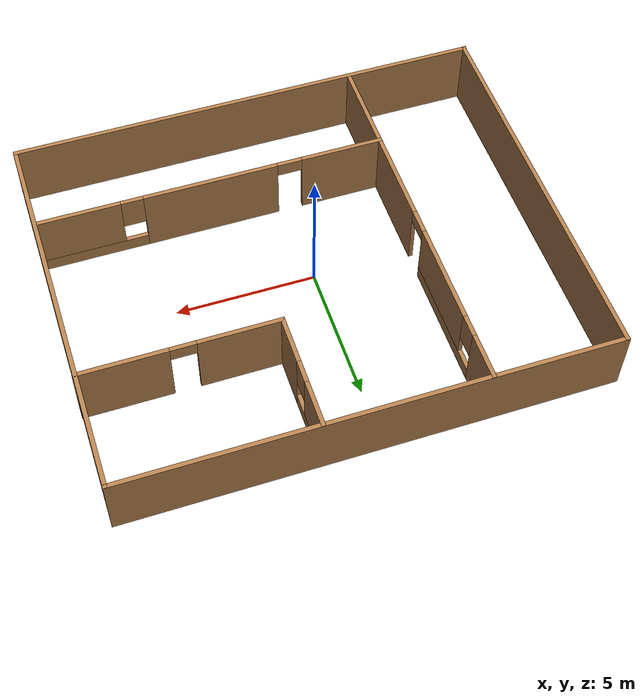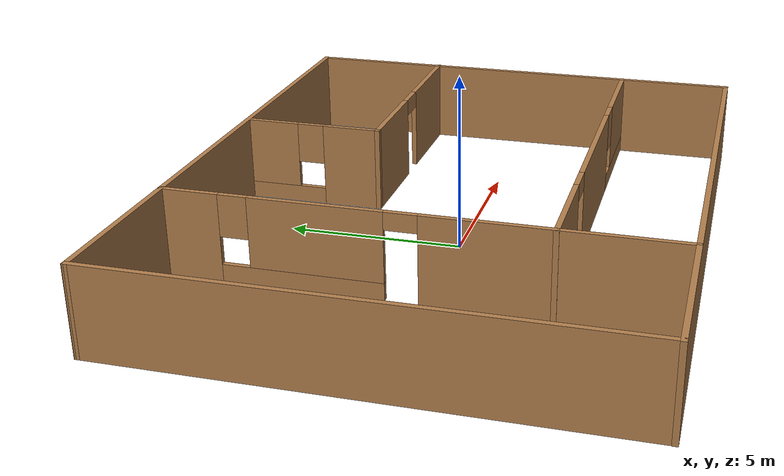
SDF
<?xml version='1.0'?>
<sdf version='1.7'>
  <model name='Class'>
    <pose>0.381618 0.217526 0 0 -0 0</pose>
    <link name='Wall_12'>
      <collision name='Wall_12_Collision'>
        <geometry>
          <box>
            <size>14 0.15 2.5</size>
          </box>
        </geometry>
        <pose>0 0 1.25 0 -0 0</pose>
      </collision>
      <visual name='Wall_12_Visual'>
        <pose>0 0 1.25 0 -0 0</pose>
        <geometry>
          <box>
            <size>14 0.15 2.5</size>
          </box>
        </geometry>
        <material>
          <script>
            <uri>file://media/materials/scripts/gazebo.material</uri>
            <name>Gazebo/Wood</name>
          </script>
          <ambient>1 1 1 1</ambient>
        </material>
        <meta>
          <layer>0</layer>
        </meta>
      </visual>
      <pose>-8.54112 0.004765 0 0 -0 -1.5708</pose>
    </link>
    <link name='Wall_14'>
      <collision name='Wall_14_Collision'>
        <geometry>
          <box>
            <size>17.2148 0.15 2.5</size>
          </box>
        </geometry>
        <pose>0 0 1.25 0 -0 0</pose>
      </collision>
      <visual name='Wall_14_Visual'>
        <pose>0 0 1.25 0 -0 0</pose>
        <geometry>
          <box>
            <size>17.2148 0.15 2.5</size>
          </box>
        </geometry>
        <material>
          <script>
            <uri>file://media/materials/scripts/gazebo.material</uri>
            <name>Gazebo/Wood</name>
          </script>
          <ambient>1 1 1 1</ambient>
        </material>
        <meta>
          <layer>0</layer>
        </meta>
      </visual>
      <pose>-0.008709 6.93559 0 0 -0 -0.000665</pose>
    </link>
    <link name='Wall_15'>
      <collision name='Wall_15_Collision'>
        <geometry>
          <box>
            <size>14.0096 0.15 2.5</size>
          </box>
        </geometry>
        <pose>0 0 1.25 0 -0 0</pose>
      </collision>
      <visual name='Wall_15_Visual'>
        <pose>0 0 1.25 0 -0 0</pose>
        <geometry>
          <box>
            <size>14.0096 0.15 2.5</size>
          </box>
        </geometry>
        <material>
          <script>
            <uri>file://media/materials/scripts/gazebo.material</uri>
            <name>Gazebo/Wood</name>
          </script>
          <ambient>1 1 1 1</ambient>
        </material>
        <meta>
          <layer>0</layer>
        </meta>
      </visual>
      <pose>8.53544 -0.011384 0 0 -0 -1.5691</pose>
    </link>
    <link name='Wall_16'>
      <collision name='Wall_16_Collision'>
        <geometry>
          <box>
            <size>17.25 0.15 2.5</size>
          </box>
        </geometry>
        <pose>0 0 1.25 0 -0 0</pose>
      </collision>
      <visual name='Wall_16_Visual'>
        <pose>0 0 1.25 0 -0 0</pose>
        <geometry>
          <box>
            <size>17.25 0.15 2.5</size>
          </box>
        </geometry>
        <material>
          <script>
            <uri>file://media/materials/scripts/gazebo.material</uri>
            <name>Gazebo/Wood</name>
          </script>
          <ambient>1 1 1 1</ambient>
        </material>
        <meta>
          <layer>0</layer>
        </meta>
      </visual>
      <pose>-0.00282 -6.94119 0 0 -0 3.14159</pose>
    </link>
    <link name='Wall_18'>
      <pose>-3.93699 -0.002974 0 0 -0 -1.5708</pose>
      <visual name='Wall_18_Visual_0'>
        <pose>-6.1651 0 1.25 0 -0 0</pose>
        <geometry>
          <box>
            <size>1.66979 0.15 2.5</size>
          </box>
        </geometry>
        <material>
          <script>
            <uri>file://media/materials/scripts/gazebo.material</uri>
            <name>Gazebo/Wood</name>
          </script>
          <ambient>1 1 1 1</ambient>
        </material>
        <meta>
          <layer>0</layer>
        </meta>
      </visual>
      <collision name='Wall_18_Collision_0'>
        <geometry>
          <box>
            <size>1.66979 0.15 2.5</size>
          </box>
        </geometry>
        <pose>-6.1651 0 1.25 0 -0 0</pose>
      </collision>
      <visual name='Wall_18_Visual_1'>
        <pose>3.5267 0 1.25 0 -0 0</pose>
        <geometry>
          <box>
            <size>6.94661 0.15 2.5</size>
          </box>
        </geometry>
        <material>
          <script>
            <uri>file://media/materials/scripts/gazebo.material</uri>
            <name>Gazebo/Wood</name>
          </script>
          <ambient>1 1 1 1</ambient>
        </material>
        <meta>
          <layer>0</layer>
        </meta>
      </visual>
      <collision name='Wall_18_Collision_1'>
        <geometry>
          <box>
            <size>6.94661 0.15 2.5</size>
          </box>
        </geometry>
        <pose>3.5267 0 1.25 0 -0 0</pose>
      </collision>
      <visual name='Wall_18_Visual_2'>
        <pose>-3.08841 0 0.25 0 -0 0</pose>
        <geometry>
          <box>
            <size>4.4836 0.15 0.5</size>
          </box>
        </geometry>
        <material>
          <script>
            <uri>file://media/materials/scripts/gazebo.material</uri>
            <name>Gazebo/Wood</name>
          </script>
          <ambient>1 1 1 1</ambient>
        </material>
        <meta>
          <layer>0</layer>
        </meta>
      </visual>
      <collision name='Wall_18_Collision_2'>
        <geometry>
          <box>
            <size>4.4836 0.15 0.5</size>
          </box>
        </geometry>
        <pose>-3.08841 0 0.25 0 -0 0</pose>
      </collision>
      <visual name='Wall_18_Visual_3'>
        <pose>-2.68841 0 1.5 0 -0 0</pose>
        <geometry>
          <box>
            <size>3.6836 0.15 2</size>
          </box>
        </geometry>
        <material>
          <script>
            <uri>file://media/materials/scripts/gazebo.material</uri>
            <name>Gazebo/Wood</name>
          </script>
          <ambient>1 1 1 1</ambient>
        </material>
        <meta>
          <layer>0</layer>
        </meta>
      </visual>
      <collision name='Wall_18_Collision_3'>
        <geometry>
          <box>
            <size>3.6836 0.15 2</size>
          </box>
        </geometry>
        <pose>-2.68841 0 1.5 0 -0 0</pose>
      </collision>
      <visual name='Wall_18_Visual_4'>
        <pose>-4.93021 0 1.9 0 -0 0</pose>
        <geometry>
          <box>
            <size>0.8 0.15 1.2</size>
          </box>
        </geometry>
        <material>
          <script>
            <uri>file://media/materials/scripts/gazebo.material</uri>
            <name>Gazebo/Wood</name>
          </script>
          <ambient>1 1 1 1</ambient>
        </material>
        <meta>
          <layer>0</layer>
        </meta>
      </visual>
      <collision name='Wall_18_Collision_4'>
        <geometry>
          <box>
            <size>0.8 0.15 1.2</size>
          </box>
        </geometry>
        <pose>-4.93021 0 1.9 0 -0 0</pose>
      </collision>
      <visual name='Wall_18_Visual_5'>
        <pose>-0.39661 0 2.25 0 -0 0</pose>
        <geometry>
          <box>
            <size>0.9 0.15 0.5</size>
          </box>
        </geometry>
        <material>
          <script>
            <uri>file://media/materials/scripts/gazebo.material</uri>
            <name>Gazebo/Wood</name>
          </script>
          <ambient>1 1 1 1</ambient>
        </material>
        <meta>
          <layer>0</layer>
        </meta>
      </visual>
      <collision name='Wall_18_Collision_5'>
        <geometry>
          <box>
            <size>0.9 0.15 0.5</size>
          </box>
        </geometry>
        <pose>-0.39661 0 2.25 0 -0 0</pose>
      </collision>
    </link>
    <link name='Wall_20'>
      <pose>5.12782 2.82354 0 0 -0 3.14159</pose>
      <visual name='Wall_20_Visual_0'>
        <pose>-1.92806 0 1.25 0 -0 0</pose>
        <geometry>
          <box>
            <size>3.14389 0.15 2.5</size>
          </box>
        </geometry>
        <material>
          <script>
            <uri>file://media/materials/scripts/gazebo.material</uri>
            <name>Gazebo/Wood</name>
          </script>
          <ambient>1 1 1 1</ambient>
        </material>
        <meta>
          <layer>0</layer>
        </meta>
      </visual>
      <collision name='Wall_20_Collision_0'>
        <geometry>
          <box>
            <size>3.14389 0.15 2.5</size>
          </box>
        </geometry>
        <pose>-1.92806 0 1.25 0 -0 0</pose>
      </collision>
      <visual name='Wall_20_Visual_1'>
        <pose>2.02194 0 1.25 0 -0 0</pose>
        <geometry>
          <box>
            <size>2.95611 0.15 2.5</size>
          </box>
        </geometry>
        <material>
          <script>
            <uri>file://media/materials/scripts/gazebo.material</uri>
            <name>Gazebo/Wood</name>
          </script>
          <ambient>1 1 1 1</ambient>
        </material>
        <meta>
          <layer>0</layer>
        </meta>
      </visual>
      <collision name='Wall_20_Collision_1'>
        <geometry>
          <box>
            <size>2.95611 0.15 2.5</size>
          </box>
        </geometry>
        <pose>2.02194 0 1.25 0 -0 0</pose>
      </collision>
      <visual name='Wall_20_Visual_2'>
        <pose>0.093886 0 2.25 0 -0 0</pose>
        <geometry>
          <box>
            <size>0.9 0.15 0.5</size>
          </box>
        </geometry>
        <material>
          <script>
            <uri>file://media/materials/scripts/gazebo.material</uri>
            <name>Gazebo/Wood</name>
          </script>
          <ambient>1 1 1 1</ambient>
        </material>
        <meta>
          <layer>0</layer>
        </meta>
      </visual>
      <collision name='Wall_20_Collision_2'>
        <geometry>
          <box>
            <size>0.9 0.15 0.5</size>
          </box>
        </geometry>
        <pose>0.093886 0 2.25 0 -0 0</pose>
      </collision>
    </link>
    <link name='Wall_21'>
      <pose>1.70282 4.87354 0 0 -0 1.5708</pose>
      <visual name='Wall_21_Visual_0'>
        <pose>-1.24217 0 1.25 0 -0 0</pose>
        <geometry>
          <box>
            <size>1.76566 0.15 2.5</size>
          </box>
        </geometry>
        <material>
          <script>
            <uri>file://media/materials/scripts/gazebo.material</uri>
            <name>Gazebo/Wood</name>
          </script>
          <ambient>1 1 1 1</ambient>
        </material>
        <meta>
          <layer>0</layer>
        </meta>
      </visual>
      <collision name='Wall_21_Collision_0'>
        <geometry>
          <box>
            <size>1.76566 0.15 2.5</size>
          </box>
        </geometry>
        <pose>-1.24217 0 1.25 0 -0 0</pose>
      </collision>
      <visual name='Wall_21_Visual_1'>
        <pose>0.882828 0 0.25 0 -0 0</pose>
        <geometry>
          <box>
            <size>2.48434 0.15 0.5</size>
          </box>
        </geometry>
        <material>
          <script>
            <uri>file://media/materials/scripts/gazebo.material</uri>
            <name>Gazebo/Wood</name>
          </script>
          <ambient>1 1 1 1</ambient>
        </material>
        <meta>
          <layer>0</layer>
        </meta>
      </visual>
      <collision name='Wall_21_Collision_1'>
        <geometry>
          <box>
            <size>2.48434 0.15 0.5</size>
          </box>
        </geometry>
        <pose>0.882828 0 0.25 0 -0 0</pose>
      </collision>
      <visual name='Wall_21_Visual_2'>
        <pose>1.28283 0 1.5 0 -0 0</pose>
        <geometry>
          <box>
            <size>1.68434 0.15 2</size>
          </box>
        </geometry>
        <material>
          <script>
            <uri>file://media/materials/scripts/gazebo.material</uri>
            <name>Gazebo/Wood</name>
          </script>
          <ambient>1 1 1 1</ambient>
        </material>
        <meta>
          <layer>0</layer>
        </meta>
      </visual>
      <collision name='Wall_21_Collision_2'>
        <geometry>
          <box>
            <size>1.68434 0.15 2</size>
          </box>
        </geometry>
        <pose>1.28283 0 1.5 0 -0 0</pose>
      </collision>
      <visual name='Wall_21_Visual_3'>
        <pose>0.040657 0 1.9 0 -0 0</pose>
        <geometry>
          <box>
            <size>0.8 0.15 1.2</size>
          </box>
        </geometry>
        <material>
          <script>
            <uri>file://media/materials/scripts/gazebo.material</uri>
            <name>Gazebo/Wood</name>
          </script>
          <ambient>1 1 1 1</ambient>
        </material>
        <meta>
          <layer>0</layer>
        </meta>
      </visual>
      <collision name='Wall_21_Collision_3'>
        <geometry>
          <box>
            <size>0.8 0.15 1.2</size>
          </box>
        </geometry>
        <pose>0.040657 0 1.9 0 -0 0</pose>
      </collision>
    </link>
    <link name='Wall_23'>
      <pose>2.23129 -3.54651 0 0 -0 0</pose>
      <visual name='Wall_23_Visual_0'>
        <pose>-4.74148 0 1.25 0 -0 0</pose>
        <geometry>
          <box>
            <size>3.01705 0.15 2.5</size>
          </box>
        </geometry>
        <material>
          <script>
            <uri>file://media/materials/scripts/gazebo.material</uri>
            <name>Gazebo/Wood</name>
          </script>
          <ambient>1 1 1 1</ambient>
        </material>
        <meta>
          <layer>0</layer>
        </meta>
      </visual>
      <collision name='Wall_23_Collision_0'>
        <geometry>
          <box>
            <size>3.01705 0.15 2.5</size>
          </box>
        </geometry>
        <pose>-4.74148 0 1.25 0 -0 0</pose>
      </collision>
      <visual name='Wall_23_Visual_1'>
        <pose>0.091527 0 1.25 0 -0 0</pose>
        <geometry>
          <box>
            <size>4.84896 0.15 2.5</size>
          </box>
        </geometry>
        <material>
          <script>
            <uri>file://media/materials/scripts/gazebo.material</uri>
            <name>Gazebo/Wood</name>
          </script>
          <ambient>1 1 1 1</ambient>
        </material>
        <meta>
          <layer>0</layer>
        </meta>
      </visual>
      <collision name='Wall_23_Collision_1'>
        <geometry>
          <box>
            <size>4.84896 0.15 2.5</size>
          </box>
        </geometry>
        <pose>0.091527 0 1.25 0 -0 0</pose>
      </collision>
      <visual name='Wall_23_Visual_2'>
        <pose>4.383 0 0.25 0 -0 0</pose>
        <geometry>
          <box>
            <size>3.73399 0.15 0.5</size>
          </box>
        </geometry>
        <material>
          <script>
            <uri>file://media/materials/scripts/gazebo.material</uri>
            <name>Gazebo/Wood</name>
          </script>
          <ambient>1 1 1 1</ambient>
        </material>
        <meta>
          <layer>0</layer>
        </meta>
      </visual>
      <collision name='Wall_23_Collision_2'>
        <geometry>
          <box>
            <size>3.73399 0.15 0.5</size>
          </box>
        </geometry>
        <pose>4.383 0 0.25 0 -0 0</pose>
      </collision>
      <visual name='Wall_23_Visual_3'>
        <pose>4.783 0 1.5 0 -0 0</pose>
        <geometry>
          <box>
            <size>2.93399 0.15 2</size>
          </box>
        </geometry>
        <material>
          <script>
            <uri>file://media/materials/scripts/gazebo.material</uri>
            <name>Gazebo/Wood</name>
          </script>
          <ambient>1 1 1 1</ambient>
        </material>
        <meta>
          <layer>0</layer>
        </meta>
      </visual>
      <collision name='Wall_23_Collision_3'>
        <geometry>
          <box>
            <size>2.93399 0.15 2</size>
          </box>
        </geometry>
        <pose>4.783 0 1.5 0 -0 0</pose>
      </collision>
      <visual name='Wall_23_Visual_4'>
        <pose>2.91601 0 1.9 0 -0 0</pose>
        <geometry>
          <box>
            <size>0.8 0.15 1.2</size>
          </box>
        </geometry>
        <material>
          <script>
            <uri>file://media/materials/scripts/gazebo.material</uri>
            <name>Gazebo/Wood</name>
          </script>
          <ambient>1 1 1 1</ambient>
        </material>
        <meta>
          <layer>0</layer>
        </meta>
      </visual>
      <collision name='Wall_23_Collision_4'>
        <geometry>
          <box>
            <size>0.8 0.15 1.2</size>
          </box>
        </geometry>
        <pose>2.91601 0 1.9 0 -0 0</pose>
      </collision>
      <visual name='Wall_23_Visual_5'>
        <pose>-2.78295 0 2.25 0 -0 0</pose>
        <geometry>
          <box>
            <size>0.9 0.15 0.5</size>
          </box>
        </geometry>
        <material>
          <script>
            <uri>file://media/materials/scripts/gazebo.material</uri>
            <name>Gazebo/Wood</name>
          </script>
          <ambient>1 1 1 1</ambient>
        </material>
        <meta>
          <layer>0</layer>
        </meta>
      </visual>
      <collision name='Wall_23_Collision_5'>
        <geometry>
          <box>
            <size>0.9 0.15 0.5</size>
          </box>
        </geometry>
        <pose>-2.78295 0 2.25 0 -0 0</pose>
      </collision>
    </link>
    <static>1</static>
  </model>
</sdf>
